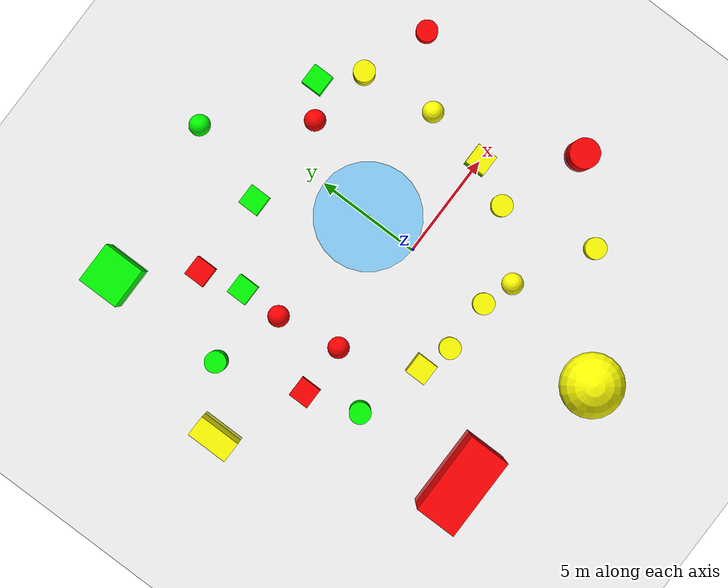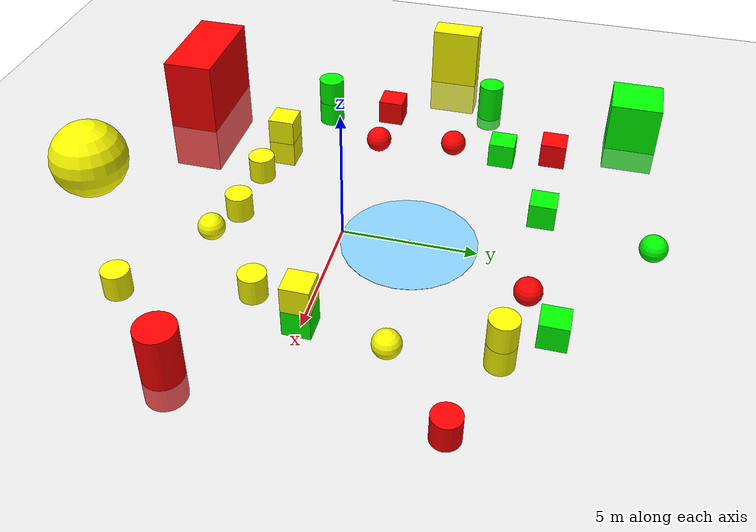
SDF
<sdf version="1.4">
  <world name="default">

    <scene>
      <ambient>0.4 0.4 0.4 1</ambient>
      <background>0.7 0.7 0.7 1</background>
      <shadows>true</shadows>
    </scene>

    <!-- A global light source -->
    <include>
      <uri>model://sun</uri>
    </include>

    <!-- A ground plane -->
    <include>
      <uri>model://ground_plane</uri>
    </include>

    <physics type="ode">
      <real_time_update_rate>1000.0</real_time_update_rate>
      <max_step_size>0.001</max_step_size>
      <real_time_factor>1</real_time_factor>
      <ode>
        <solver>
          <type>quick</type>
          <iters>150</iters>
          <precon_iters>0</precon_iters>
          <sor>1.400000</sor>
          <use_dynamic_moi_rescaling>1</use_dynamic_moi_rescaling>
        </solver>
        <constraints>
          <cfm>0.00001</cfm>
          <erp>0.2</erp>
          <contact_max_correcting_vel>2000.000000</contact_max_correcting_vel>
          <contact_surface_layer>0.01000</contact_surface_layer>
        </constraints>
      </ode>
    </physics>

    <!-- Skyblue solid circle -->
    <model name="skyblue_circle">
      <static>1</static>
      <link name="circle_link">
        <visual name="circle_visual">
          <geometry>
            <cylinder>
              <radius>2.5</radius>
              <length>0.01</length>
            </cylinder>
          </geometry>
          <material>
            <ambient>0.53 0.81 0.98 1</ambient> <!-- 하늘색 -->
            <diffuse>0.53 0.81 0.98 1</diffuse>
          </material>
          <pose>0 2.5 0.01 0 0 0</pose> <!-- 원의 중심이 (0, 2.5)에 위치 -->
        </visual>
      </link>
    </model>

    <!-- Red circle slightly protruding from the center of the skyblue circle -->
    <model name="red_circle_center">
      <static>1</static>
      <link name="center_circle_link">
        <visual name="center_circle_visual">
          <geometry>
            <cylinder>
              <radius>0.10</radius> <!-- 크기를 약간 키움 -->
              <length>0.02</length> <!-- 높이를 약간 증가 -->
            </cylinder>
          </geometry>
          <material>
            <ambient>1 0 0 1</ambient> <!-- 빨간색 -->
            <diffuse>1 0 0 1</diffuse>
          </material>
          <pose>0 2.5 0.02 0 0 0</pose> <!-- 빨간색 원이 파란색 원의 중심에 위치 -->
        </visual>
      </link>
    </model>

    <!-- Blocks -->

    <!-- Red Sphere -->
    <model name="red_sphere_">
      <static>0</static>
      <pose>-5.5 0 0.5 0 0 0</pose> <!-- [-5,-2]~[5,8] 범위 밖에 위치 -->
      <link name="sphere_link">
        <collision name="sphere_collision">
          <geometry>
            <sphere>
              <radius>0.5</radius>
            </sphere>
          </geometry>
          <surface>
            <contact>
              <collide_bitmask>0x01</collide_bitmask>
            </contact>
          </surface>
        </collision>
        <visual name="sphere_visual">
          <geometry>
            <sphere>
              <radius>0.5</radius>
            </sphere>
          </geometry>
          <material>
            <ambient>1 0 0 1</ambient> <!-- 빨간색 -->
            <diffuse>1 0 0 1</diffuse>
          </material>
        </visual>
      </link>
    </model>

    <!-- Yellow Cylinder -->
    <model name="yellow_cylinder_">
      <static>0</static>
      <pose>5 6.5 0.5 0 0 0</pose> <!-- [-5,-2]~[5,8] 범위 밖에 위치 -->
      <link name="cylinder_link">
        <collision name="cylinder_collision">
          <geometry>
            <cylinder>
              <radius>0.5</radius>
              <length>1.0</length>
            </cylinder>
          </geometry>
          <surface>
            <contact>
              <collide_bitmask>0x01</collide_bitmask>
            </contact>
          </surface>
        </collision>
        <visual name="cylinder_visual">
          <geometry>
            <cylinder>
              <radius>0.5</radius>
              <length>1.0</length>
            </cylinder>
          </geometry>
          <material>
            <ambient>1 1 0 1</ambient> <!-- 노란색 -->
            <diffuse>1 1 0 1</diffuse>
          </material>
        </visual>
      </link>
    </model>

    <!-- Yellow Cylinder -->
    <model name="yellow_cylinder_up_1">
      <static>0</static>
      <pose>5 6.5 1.5 0 0 0</pose> <!-- [-5,-2]~[5,8] 범위 밖에 위치 -->
      <link name="cylinder_link">
        <collision name="cylinder_collision">
          <geometry>
            <cylinder>
              <radius>0.5</radius>
              <length>1.0</length>
            </cylinder>
          </geometry>
          <surface>
            <contact>
              <collide_bitmask>0x01</collide_bitmask>
            </contact>
          </surface>
        </collision>
        <visual name="cylinder_visual">
          <geometry>
            <cylinder>
              <radius>0.5</radius>
              <length>1.0</length>
            </cylinder>
          </geometry>
          <material>
            <ambient>1 1 0 1</ambient> <!-- 노란색 -->
            <diffuse>1 1 0 1</diffuse>
          </material>
        </visual>
      </link>
    </model>

    <!-- Green Box -->
    <model name="yellow_box_">
      <static>0</static>
      <pose>-4 -3.5 0.5 0 0 0</pose> <!-- [-5,-2]~[5,8] 범위 밖에 위치 -->
      <link name="box_link">
        <collision name="box_collision">
          <geometry>
            <box>
              <size>1.0 1.0 1.0</size>
            </box>
          </geometry>
          <surface>
            <contact>
              <collide_bitmask>0x01</collide_bitmask>
            </contact>
          </surface>
        </collision>
        <visual name="box_visual">
          <geometry>
            <box>
              <size>1.0 1.0 1.0</size>
            </box>
          </geometry>
          <material>
            <ambient>1 1 0 1</ambient>
            <diffuse>1 1 0 1</diffuse>
          </material>
        </visual>
      </link>
    </model>

    <!-- Green Box -->
    <model name="yellow_box_up_1">
      <static>0</static>
      <pose>-4 -3.5 1.5 0 0 0</pose> <!-- [-5,-2]~[5,8] 범위 밖에 위치 -->
      <link name="box_link">
        <collision name="box_collision">
          <geometry>
            <box>
              <size>1.0 1.0 1.0</size>
            </box>
          </geometry>
          <surface>
            <contact>
              <collide_bitmask>0x01</collide_bitmask>
            </contact>
          </surface>
        </collision>
        <visual name="box_visual">
          <geometry>
            <box>
              <size>1.0 1.0 1.0</size>
            </box>
          </geometry>
          <material>
            <ambient>1 1 0 1</ambient>
            <diffuse>1 1 0 1</diffuse>
          </material>
        </visual>
      </link>
    </model>

    <!-- Skyblue Sphere -->
    <model name="skyblue_sphere">
      <static>0</static>
      <pose>1.5 -4.5 0.5 0 0 0</pose> <!-- [-5,-2]~[5,8] 범위 밖에 위치 -->
      <link name="sphere_link">
        <collision name="sphere_collision">
          <geometry>
            <sphere>
              <radius>0.5</radius>
            </sphere>
          </geometry>
          <surface>
            <contact>
              <collide_bitmask>0x01</collide_bitmask>
            </contact>
          </surface>
        </collision>
        <visual name="sphere_visual">
          <geometry>
            <sphere>
              <radius>0.5</radius>
            </sphere>
          </geometry>
          <material>
            <ambient>1 1 0 1</ambient> <!-- 노란색 -->
            <diffuse>1 1 0 1</diffuse>
          </material>
        </visual>
      </link>
    </model>

    <!-- Additional Models -->
    <model name="additional_sphere_1">
      <static>0</static>
      <pose>-6 3 0.5 0 0 0</pose> <!-- [-5,-2]~[5,8] 범위 밖에 위치 -->
      <link name="sphere_link">
        <collision name="sphere_collision">
          <geometry>
            <sphere>
              <radius>0.5</radius>
            </sphere>
          </geometry>
          <surface>
            <contact>
              <collide_bitmask>0x01</collide_bitmask>
            </contact>
          </surface>
        </collision>
        <visual name="sphere_visual">
          <geometry>
            <sphere>
              <radius>0.5</radius>
            </sphere>
          </geometry>
          <material>
            <ambient>1 0 0 1</ambient> <!-- 빨간색 -->
            <diffuse>1 0 0 1</diffuse>
          </material>
        </visual>
      </link>
    </model>

    <model name="additional_box_1">
      <static>0</static>
      <pose>5 0 0.5 0 0 0</pose> <!-- [-5,-2]~[5,8] 범위 밖에 위치 -->
      <link name="box_link">
        <collision name="box_collision">
          <geometry>
            <box>
              <size>1.0 1.0 1.0</size>
            </box>
          </geometry>
          <surface>
            <contact>
              <collide_bitmask>0x01</collide_bitmask>
            </contact>
          </surface>
        </collision>
        <visual name="box_visual">
          <geometry>
            <box>
              <size>1.0 1.0 1.0</size>
            </box>
          </geometry>
          <material>
            <ambient>0 1 0 1</ambient> <!-- 초록색 -->
            <diffuse>0 1 0 1</diffuse>
          </material>
        </visual>
      </link>
    </model>

    <model name="additional_box_1_up">
      <static>0</static>
      <pose>5 0 1.5 0 0 0</pose> <!-- [-5,-2]~[5,8] 범위 밖에 위치 -->
      <link name="box_link">
        <collision name="box_collision">
          <geometry>
            <box>
              <size>1.0 1.0 1.0</size>
            </box>
          </geometry>
          <surface>
            <contact>
              <collide_bitmask>0x01</collide_bitmask>
            </contact>
          </surface>
        </collision>
        <visual name="box_visual">
          <geometry>
            <box>
              <size>1.0 1.0 1.0</size>
            </box>
          </geometry>
          <material>
            <ambient>1 1 0 1</ambient> <!-- 노록색 -->
            <diffuse>1 1 0 1</diffuse>
          </material>
        </visual>
      </link>
    </model>

    <model name="additional_cylinder_1">
      <static>0</static>
      <pose>-2.5 -4 0.5 0 0 0</pose> <!-- [-5,-2]~[5,8] 범위 밖에 위치 -->
      <link name="cylinder_link">
        <collision name="cylinder_collision">
          <geometry>
            <cylinder>
              <radius>0.5</radius>
              <length>1.0</length>
            </cylinder>
          </geometry>
          <surface>
            <contact>
              <collide_bitmask>0x01</collide_bitmask>
            </contact>
          </surface>
        </collision>
        <visual name="cylinder_visual">
          <geometry>
            <cylinder>
              <radius>0.5</radius>
              <length>1.0</length>
            </cylinder>
          </geometry>
          <material>
            <ambient>1 1 0 1</ambient> <!-- 노란색 -->
            <diffuse>1 1 0 1</diffuse>
          </material>
        </visual>
      </link>
    </model>

    <model name="additional_sphere_2">
      <static>0</static>
      <pose>2 7 0.5 0 0 0</pose> <!-- [-5,-2]~[5,8] 범위 밖에 위치 -->
      <link name="sphere_link">
        <collision name="sphere_collision">
          <geometry>
            <sphere>
              <radius>0.5</radius>
            </sphere>
          </geometry>
          <surface>
            <contact>
              <collide_bitmask>0x01</collide_bitmask>
            </contact>
          </surface>
        </collision>
        <visual name="sphere_visual">
          <geometry>
            <sphere>
              <radius>0.5</radius>
            </sphere>
          </geometry>
          <material>
            <ambient>1 0 0 1</ambient> <!-- 빨간색 -->
            <diffuse>1 0 0 1</diffuse>
          </material>
        </visual>
      </link>
    </model>

    <model name="additional_box_2">
      <static>0</static>
      <pose>-6 5 0.5 0 0 0</pose> <!-- [-5,-2]~[5,8] 범위 밖에 위치 -->
      <link name="box_link">
        <collision name="box_collision">
          <geometry>
            <box>
              <size>1.0 1.0 1.0</size>
            </box>
          </geometry>
          <surface>
            <contact>
              <collide_bitmask>0x01</collide_bitmask>
            </contact>
          </surface>
        </collision>
        <visual name="box_visual">
          <geometry>
            <box>
              <size>1.0 1.0 1.0</size>
            </box>
          </geometry>
          <material>
            <ambient>0 1 0 1</ambient> <!-- 초록색 -->
            <diffuse>0 1 0 1</diffuse>
          </material>
        </visual>
      </link>
    </model>

    <model name="additional_cylinder_2">
      <static>0</static>
      <pose>4 -2 0.5 0 0 0</pose> <!-- [-5,-2]~[5,8] 범위 밖에 위치 -->
      <link name="cylinder_link">
        <collision name="cylinder_collision">
          <geometry>
            <cylinder>
              <radius>0.5</radius>
              <length>1.0</length>
            </cylinder>
          </geometry>
          <surface>
            <contact>
              <collide_bitmask>0x01</collide_bitmask>
            </contact>
          </surface>
        </collision>
        <visual name="cylinder_visual">
          <geometry>
            <cylinder>
              <radius>0.5</radius>
              <length>1.0</length>
            </cylinder>
          </geometry>
          <material>
            <ambient>1 1 0 1</ambient> <!-- 노란색 -->
            <diffuse>1 1 0 1</diffuse>
          </material>
        </visual>
      </link>
    </model>

    <model name="additional_sphere_3">
      <static>0</static>
      <pose>5.5 3 0.5 0 0 0</pose> <!-- [-5,-2]~[5,8] 범위 밖에 위치 -->
      <link name="sphere_link">
        <collision name="sphere_collision">
          <geometry>
            <sphere>
              <radius>0.5</radius>
            </sphere>
          </geometry>
          <surface>
            <contact>
              <collide_bitmask>0x01</collide_bitmask>
            </contact>
          </surface>
        </collision>
        <visual name="sphere_visual">
          <geometry>
            <sphere>
              <radius>0.5</radius>
            </sphere>
          </geometry>
          <material>
            <ambient>1 1 0 1</ambient> <!-- 노란색 -->
            <diffuse>1 1 0 1</diffuse>
          </material>
        </visual>
      </link>
    </model>

    <model name="additional_box_3">
      <static>0</static>
      <pose>-2.5 7 0.5 0 0 0</pose> <!-- [-5,-2]~[5,8] 범위 밖에 위치 -->
      <link name="box_link">
        <collision name="box_collision">
          <geometry>
            <box>
              <size>1.0 1.0 1.0</size>
            </box>
          </geometry>
          <surface>
            <contact>
              <collide_bitmask>0x01</collide_bitmask>
            </contact>
          </surface>
        </collision>
        <visual name="box_visual">
          <geometry>
            <box>
              <size>1.0 1.0 1.0</size>
            </box>
          </geometry>
          <material>
            <ambient>0 1 0 1</ambient> <!-- 초록색 -->
            <diffuse>0 1 0 1</diffuse>
          </material>
        </visual>
      </link>
    </model>

    <model name="additional_cylinder_3">
      <static>0</static>
      <pose>5 -6.5 0.5 0 0 0</pose> <!-- [-5,-2]~[5,8] 범위 밖에 위치 -->
      <link name="cylinder_link">
        <collision name="cylinder_collision">
          <geometry>
            <cylinder>
              <radius>0.5</radius>
              <length>1.0</length>
            </cylinder>
          </geometry>
          <surface>
            <contact>
              <collide_bitmask>0x01</collide_bitmask>
            </contact>
          </surface>
        </collision>
        <visual name="cylinder_visual">
          <geometry>
            <cylinder>
              <radius>0.5</radius>
              <length>1.0</length>
            </cylinder>
          </geometry>
          <material>
            <ambient>1 1 0 1</ambient> <!-- 노란색 -->
            <diffuse>1 1 0 1</diffuse>
          </material>
        </visual>
      </link>
    </model>

    <model name="additional_cylinder_4">
      <static>0</static>
      <pose>0 -4 0.5 0 0 0</pose> <!-- [-5,-2]~[5,8] 범위 밖에 위치 -->
      <link name="cylinder_link">
        <collision name="cylinder_collision">
          <geometry>
            <cylinder>
              <radius>0.5</radius>
              <length>1.0</length>
            </cylinder>
          </geometry>
          <surface>
            <contact>
              <collide_bitmask>0x01</collide_bitmask>
            </contact>
          </surface>
        </collision>
        <visual name="cylinder_visual">
          <geometry>
            <cylinder>
              <radius>0.5</radius>
              <length>1.0</length>
            </cylinder>
          </geometry>
          <material>
            <ambient>1 1 0 1</ambient> <!-- 노란색 -->
            <diffuse>1 1 0 1</diffuse>
          </material>
        </visual>
      </link>
    </model>

    <model name="additional_box_4">
      <static>0</static>
      <pose>-6.5 7 0.5 0 0 0</pose> <!-- [-5,-2]~[5,8] 범위 밖에 위치 -->
      <link name="box_link">
        <collision name="box_collision">
          <geometry>
            <box>
              <size>1.0 1.0 1.0</size>
            </box>
          </geometry>
          <surface>
            <contact>
              <collide_bitmask>0x01</collide_bitmask>
            </contact>
          </surface>
        </collision>
        <visual name="box_visual">
          <geometry>
            <box>
              <size>1.0 1.0 1.0</size>
            </box>
          </geometry>
          <material>
            <ambient>1 0 0 1</ambient> <!-- 빨간색 -->
            <diffuse>1 0 0 1</diffuse>
          </material>
        </visual>
      </link>
    </model>

    <model name="additional_box_5">
      <static>0</static>
      <pose>-8 0 0.5 0 0 0</pose> <!-- [-5,-2]~[5,8] 범위 밖에 위치 -->
      <link name="box_link">
        <collision name="box_collision">
          <geometry>
            <box>
              <size>1.0 1.0 1.0</size>
            </box>
          </geometry>
          <surface>
            <contact>
              <collide_bitmask>0x01</collide_bitmask>
            </contact>
          </surface>
        </collision>
        <visual name="box_visual">
          <geometry>
            <box>
              <size>1.0 1.0 1.0</size>
            </box>
          </geometry>
          <material>
            <ambient>1 0 0 1</ambient> <!-- 빨간색 -->
            <diffuse>1 0 0 1</diffuse>
          </material>
        </visual>
      </link>
    </model>

    <model name="additional_box_6">
      <static>0</static>
      <pose>3.5 8 0.5 0 0 0</pose> <!-- [-5,-2]~[5,8] 범위 밖에 위치 -->
      <link name="box_link">
        <collision name="box_collision">
          <geometry>
            <box>
              <size>1.0 1.0 1.0</size>
            </box>
          </geometry>
          <surface>
            <contact>
              <collide_bitmask>0x01</collide_bitmask>
            </contact>
          </surface>
        </collision>
        <visual name="box_visual">
          <geometry>
            <box>
              <size>1.0 1.0 1.0</size>
            </box>
          </geometry>
          <material>
            <ambient>0 1 0 1</ambient> <!-- 초록색 -->
            <diffuse>0 1 0 1</diffuse>
          </material>
        </visual>
      </link>
    </model>

    <model name="additional_cylinder_5">
      <static>0</static>
      <pose>8.2 5.4 0.5 0 0 0</pose> <!-- [-5,-2]~[5,8] 범위 밖에 위치 -->
      <link name="cylinder_link">
        <collision name="cylinder_collision">
          <geometry>
            <cylinder>
              <radius>0.5</radius>
              <length>1.0</length>
            </cylinder>
          </geometry>
          <surface>
            <contact>
              <collide_bitmask>0x01</collide_bitmask>
            </contact>
          </surface>
        </collision>
        <visual name="cylinder_visual">
          <geometry>
            <cylinder>
              <radius>0.5</radius>
              <length>1.0</length>
            </cylinder>
          </geometry>
          <material>
            <ambient>1 0 0 1</ambient> <!-- 빨간색 -->
            <diffuse>1 0 0 1</diffuse>
          </material>
        </visual>
      </link>
    </model>

    <model name="additional_sphere_5">
      <static>0</static>
      <pose>-1.3 11 0.5 0 0 0</pose> <!-- [-5,-2]~[5,8] 범위 밖에 위치 -->
      <link name="sphere_link">
        <collision name="sphere_collision">
          <geometry>
            <sphere>
              <radius>0.5</radius>
            </sphere>
          </geometry>
          <surface>
            <contact>
              <collide_bitmask>0x01</collide_bitmask>
            </contact>
          </surface>
        </collision>
        <visual name="sphere_visual">
          <geometry>
            <sphere>
              <radius>0.5</radius>
            </sphere>
          </geometry>
          <material>
            <ambient>0 1 0 1</ambient> <!-- 초록색 -->
            <diffuse>0 1 0 1</diffuse>
          </material>
        </visual>
      </link>
    </model>

    <model name="additional_cylinder_6">
      <static>0</static>
      <pose>-7.2 -2.5 0.5 0 0 0</pose> <!-- [-5,-2]~[5,8] 범위 밖에 위치 -->
      <link name="cylinder_link">
        <collision name="cylinder_collision">
          <geometry>
            <cylinder>
              <radius>0.5</radius>
              <length>1.0</length>
            </cylinder>
          </geometry>
          <surface>
            <contact>
              <collide_bitmask>0x01</collide_bitmask>
            </contact>
          </surface>
        </collision>
        <visual name="cylinder_visual">
          <geometry>
            <cylinder>
              <radius>0.5</radius>
              <length>1.0</length>
            </cylinder>
          </geometry>
          <material>
            <ambient>0 1 0 1</ambient> <!-- 초록색 -->
            <diffuse>0 1 0 1</diffuse>
          </material>
        </visual>
      </link>
    </model>

    <model name="additional_cylinder_7">
      <static>0</static>
      <pose>-7.2 -2.5 1.5 0 0 0</pose> <!-- [-5,-2]~[5,8] 범위 밖에 위치 -->
      <link name="cylinder_link">
        <collision name="cylinder_collision">
          <geometry>
            <cylinder>
              <radius>0.5</radius>
              <length>1.0</length>
            </cylinder>
          </geometry>
          <surface>
            <contact>
              <collide_bitmask>0x01</collide_bitmask>
            </contact>
          </surface>
        </collision>
        <visual name="cylinder_visual">
          <geometry>
            <cylinder>
              <radius>0.5</radius>
              <length>1.0</length>
            </cylinder>
          </geometry>
          <material>
            <ambient>0 1 0 1</ambient> <!-- 초록색 -->
            <diffuse>0 1 0 1</diffuse>
          </material>
        </visual>
      </link>
    </model>

    <model name="additional_box_7">
      <static>0</static>
      <pose>-9 10 0.5 0 0 0</pose> <!-- [-5,-2]~[5,8] 범위 밖에 위치 -->
      <link name="box_link">
        <collision name="box_collision">
          <geometry>
            <box>
              <size>2.0 2.0 3.0</size>
            </box>
          </geometry>
          <surface>
            <contact>
              <collide_bitmask>0x01</collide_bitmask>
            </contact>
          </surface>
        </collision>
        <visual name="box_visual">
          <geometry>
            <box>
              <size>2.0 2.0 3.0</size>
            </box>
          </geometry>
          <material>
            <ambient>0 1 0 1</ambient> <!-- 초록색 -->
            <diffuse>0 1 0 1</diffuse>
          </material>
        </visual>
      </link>
    </model>

    <model name="additional_box_8">
      <static>0</static>
      <pose>-7 -8 0.5 0 0 0</pose> <!-- [-5,-2]~[5,8] 범위 밖에 위치 -->
      <link name="box_link">
        <collision name="box_collision">
          <geometry>
            <box>
              <size>4.0 2.0 5.0</size>
            </box>
          </geometry>
          <surface>
            <contact>
              <collide_bitmask>0x01</collide_bitmask>
            </contact>
          </surface>
        </collision>
        <visual name="box_visual">
          <geometry>
            <box>
              <size>4.0 2.0 5.0</size>
            </box>
          </geometry>
          <material>
            <ambient>1 0 0 1</ambient> <!-- 빨간색 -->
            <diffuse>1 0 0 1</diffuse>
          </material>
        </visual>
      </link>
    </model>

    <model name="additional_sphere_6">
      <static>0</static>
      <pose>0 -10 1.5 0 0 0</pose> <!-- [-5,-2]~[5,8] 범위 밖에 위치 -->
      <link name="sphere_link">
        <collision name="sphere_collision">
          <geometry>
            <sphere>
              <radius>1.5</radius>
            </sphere>
          </geometry>
          <surface>
            <contact>
              <collide_bitmask>0x01</collide_bitmask>
            </contact>
          </surface>
        </collision>
        <visual name="sphere_visual">
          <geometry>
            <sphere>
              <radius>1.5</radius>
            </sphere>
          </geometry>
          <material>
            <ambient>1 1 0 1</ambient> <!-- 노란색 -->
            <diffuse>1 1 0 1</diffuse>
          </material>
        </visual>
      </link>
    </model>

    <model name="additional_cylinder_8">
      <static>0</static>
      <pose>-9.3 4 0.5 0 0 0</pose> <!-- [-5,-2]~[5,8] 범위 밖에 위치 -->
      <link name="cylinder_link">
        <collision name="cylinder_collision">
          <geometry>
            <cylinder>
              <radius>0.5</radius>
              <length>2.0</length>
            </cylinder>
          </geometry>
          <surface>
            <contact>
              <collide_bitmask>0x01</collide_bitmask>
            </contact>
          </surface>
        </collision>
        <visual name="cylinder_visual">
          <geometry>
            <cylinder>
              <radius>0.5</radius>
              <length>2.0</length>
            </cylinder>
          </geometry>
          <material>
            <ambient>0 1 0 1</ambient> <!-- 초록색 -->
            <diffuse>0 1 0 1</diffuse>
          </material>
        </visual>
      </link>
    </model>

    <model name="additional_box_9">
      <static>0</static>
      <pose>-12 2 0.5 0 0 0</pose> <!-- [-5,-2]~[5,8] 범위 밖에 위치 -->
      <link name="box_link">
        <collision name="box_collision">
          <geometry>
            <box>
              <size>1.0 2.0 4.0</size>
            </box>
          </geometry>
          <surface>
            <contact>
              <collide_bitmask>0x01</collide_bitmask>
            </contact>
          </surface>
        </collision>
        <visual name="box_visual">
          <geometry>
            <box>
              <size>1.0 2.0 4.0</size>
            </box>
          </geometry>
          <material>
            <ambient>1 1 0 1</ambient> <!-- 노란색 -->
            <diffuse>1 1 0 1</diffuse>
          </material>
        </visual>
      </link>
    </model>

    <model name="additional_cylinder_9">
      <static>0</static>
      <pose>8 -3.5 0.5 0 0 0</pose> <!-- [-5,-2]~[5,8] 범위 밖에 위치 -->
      <link name="cylinder_link">
        <collision name="cylinder_collision">
          <geometry>
            <cylinder>
              <radius>0.7</radius>
              <length>3.0</length>
            </cylinder>
          </geometry>
          <surface>
            <contact>
              <collide_bitmask>0x01</collide_bitmask>
            </contact>
          </surface>
        </collision>
        <visual name="cylinder_visual">
          <geometry>
            <cylinder>
              <radius>0.7</radius>
              <length>3.0</length>
            </cylinder>
          </geometry>
          <material>
            <ambient>1 0 0 1</ambient> <!-- 빨간색 -->
            <diffuse>1 0 0 1</diffuse>
          </material>
        </visual>
      </link>
    </model>

  </world>
</sdf>
